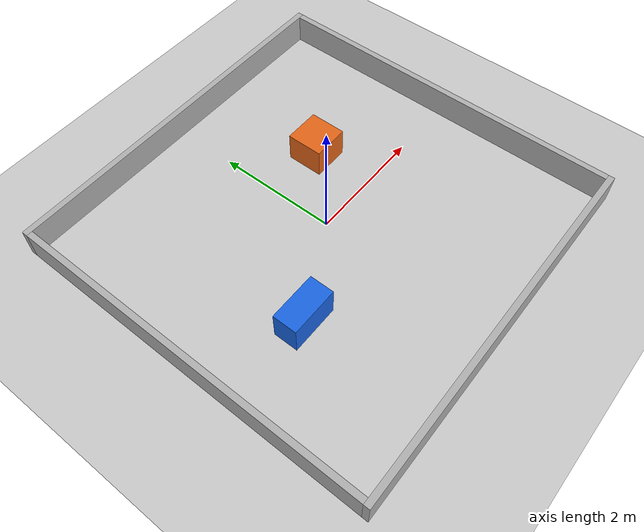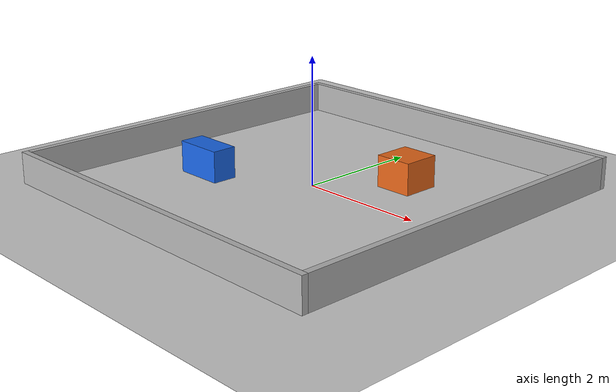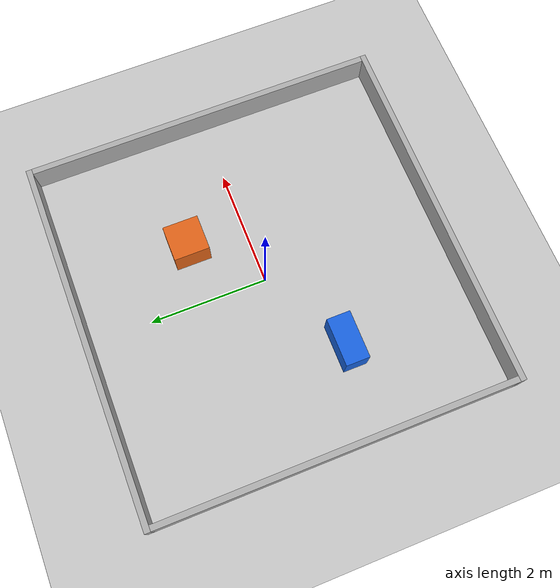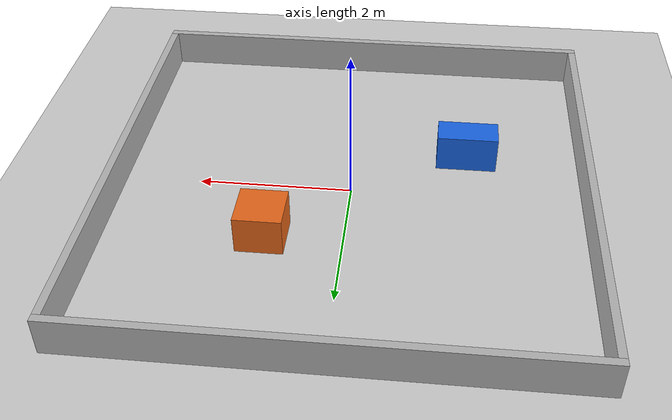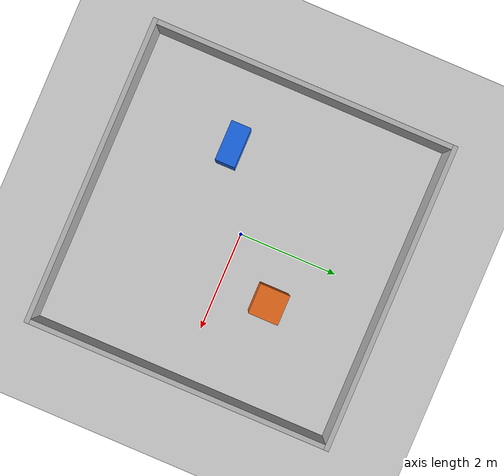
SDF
<?xml version="1.0" ?>
<sdf version="1.8">
  <world name="omni_test_world">

    <plugin filename="ignition-gazebo-physics-system"
            name="ignition::gazebo::systems::Physics"/>
    <plugin filename="ignition-gazebo-user-commands-system"
            name="ignition::gazebo::systems::UserCommands"/>
    <plugin filename="ignition-gazebo-scene-broadcaster-system"
            name="ignition::gazebo::systems::SceneBroadcaster"/>
    <plugin filename="ignition-gazebo-sensors-system"
            name="ignition::gazebo::systems::Sensors">
      <render_engine>ogre2</render_engine>
    </plugin>
    <plugin filename="ignition-gazebo-imu-system"
            name="ignition::gazebo::systems::Imu"/>

    <physics name="1ms" type="ignored">
      <max_step_size>0.001</max_step_size>
      <real_time_factor>1.0</real_time_factor>
    </physics>

    <gravity>0 0 -9.81</gravity>

    <scene>
      <ambient>0.6 0.6 0.6 1</ambient>
      <background>0.7 0.8 0.9 1</background>
      <shadows>true</shadows>
    </scene>

    <light type="directional" name="sun">
      <cast_shadows>true</cast_shadows>
      <pose>0 0 10 0 0 0</pose>
      <diffuse>0.9 0.9 0.9 1</diffuse>
      <specular>0.2 0.2 0.2 1</specular>
      <direction>-0.4 0.3 -0.9</direction>
    </light>

    <!-- Ground plane -->
    <model name="ground_plane">
      <static>true</static>
      <link name="link">
        <collision name="collision">
          <geometry><plane><normal>0 0 1</normal><size>100 100</size></plane></geometry>
        </collision>
        <visual name="visual">
          <geometry><plane><normal>0 0 1</normal><size>100 100</size></plane></geometry>
          <material><ambient>0.8 0.8 0.8 1</ambient><diffuse>0.8 0.8 0.8 1</diffuse></material>
        </visual>
      </link>
    </model>

    <model name="arena">
      <static>true</static>

      <link name="wall_north">
        <pose>0 3.05 0.25 0 0 0</pose>
        <collision name="c"><geometry><box><size>6.2 0.1 0.5</size></box></geometry></collision>
        <visual name="v"><geometry><box><size>6.2 0.1 0.5</size></box></geometry>
          <material><ambient>0.6 0.6 0.6 1</ambient><diffuse>0.7 0.7 0.7 1</diffuse></material></visual>
      </link>
      <link name="wall_south">
        <pose>0 -3.05 0.25 0 0 0</pose>
        <collision name="c"><geometry><box><size>6.2 0.1 0.5</size></box></geometry></collision>
        <visual name="v"><geometry><box><size>6.2 0.1 0.5</size></box></geometry>
          <material><ambient>0.6 0.6 0.6 1</ambient><diffuse>0.7 0.7 0.7 1</diffuse></material></visual>
      </link>
      <link name="wall_east">
        <pose>3.05 0 0.25 0 0 0</pose>
        <collision name="c"><geometry><box><size>0.1 6.0 0.5</size></box></geometry></collision>
        <visual name="v"><geometry><box><size>0.1 6.0 0.5</size></box></geometry>
          <material><ambient>0.6 0.6 0.6 1</ambient><diffuse>0.7 0.7 0.7 1</diffuse></material></visual>
      </link>
      <link name="wall_west">
        <pose>-3.05 0 0.25 0 0 0</pose>
        <collision name="c"><geometry><box><size>0.1 6.0 0.5</size></box></geometry></collision>
        <visual name="v"><geometry><box><size>0.1 6.0 0.5</size></box></geometry>
          <material><ambient>0.6 0.6 0.6 1</ambient><diffuse>0.7 0.7 0.7 1</diffuse></material></visual>
      </link>

      <link name="obstacle_1">
        <pose>1.0 1.0 0.25 0 0 0</pose>
        <collision name="c"><geometry><box><size>0.6 0.6 0.5</size></box></geometry></collision>
        <visual name="v"><geometry><box><size>0.6 0.6 0.5</size></box></geometry>
          <material><ambient>0.8 0.3 0.1 1</ambient><diffuse>0.9 0.4 0.1 1</diffuse></material></visual>
      </link>
      <link name="obstacle_2">
        <pose>-1.5 -0.8 0.25 0 0 0</pose>
        <collision name="c"><geometry><box><size>0.8 0.4 0.5</size></box></geometry></collision>
        <visual name="v"><geometry><box><size>0.8 0.4 0.5</size></box></geometry>
          <material><ambient>0.1 0.3 0.8 1</ambient><diffuse>0.1 0.4 0.9 1</diffuse></material></visual>
      </link>
    </model>

  </world>
</sdf>
